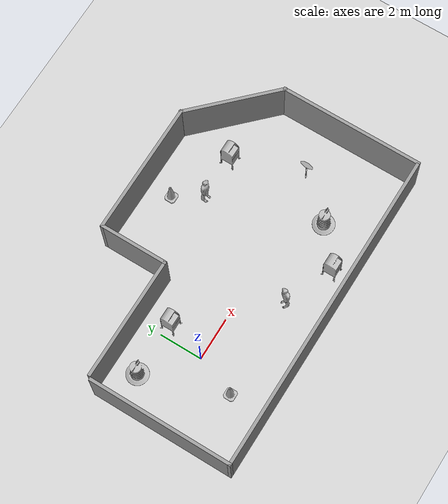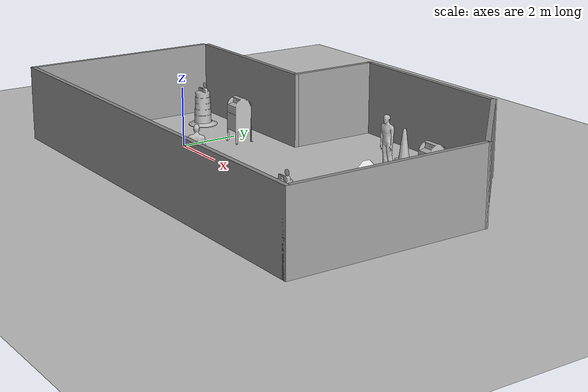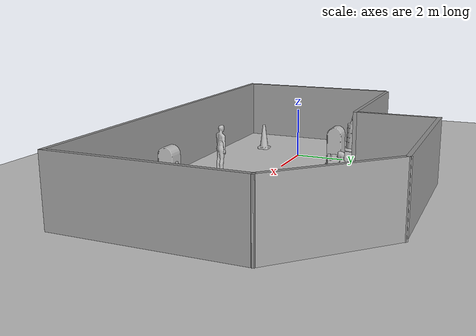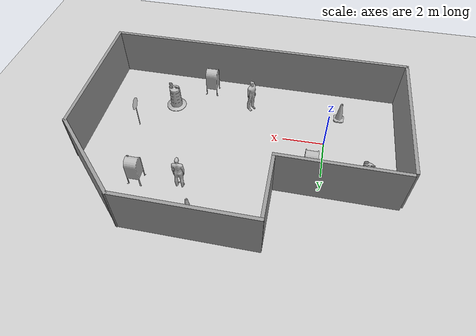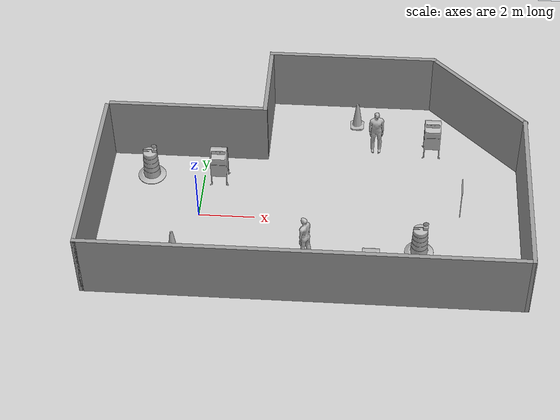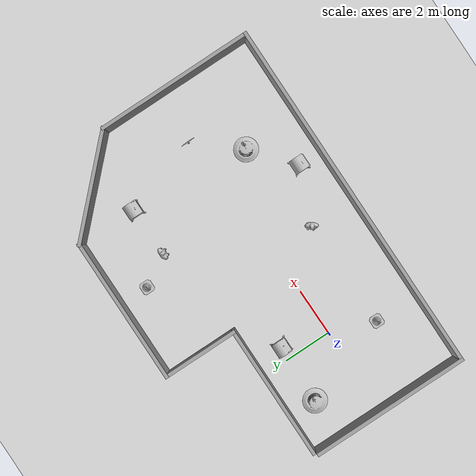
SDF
<sdf version="1.7">
 <world name="default">
  <light name="sun" type="directional">
   <pose>0 0 10 0 -0 0</pose>
   <diffuse>0.8 0.8 0.8 1</diffuse>
   <specular>0.2 0.2 0.2 1</specular>
   <attenuation>
    <range>1000</range>
    <constant>0.9</constant>
    <linear>0.01</linear>
    <quadratic>0.001</quadratic>
   </attenuation>
   <direction>-0.5 0.1 -0.9</direction>
   <spot><inner_angle>0</inner_angle><outer_angle>0</outer_angle><falloff>0</falloff></spot>
  </light>
  <model name="ground_plane">
   <static>1</static>
   <link name="link">
    <collision name="collision">
     <geometry><plane><normal>0 0 1</normal><size>100 100</size></plane></geometry>
     <surface>
      <contact><collide_bitmask>65535</collide_bitmask></contact>
      <friction><ode><mu>100</mu><mu2>50</mu2></ode></friction>
     </surface>
    </collision>
    <visual name="visual">
     <cast_shadows>0</cast_shadows>
     <geometry><plane><normal>0 0 1</normal><size>100 100</size></plane></geometry>
     <material>
      <script><uri>file://media/materials/scripts/gazebo.material</uri><name>Gazebo/Grey</name></script>
     </material>
    </visual>
   </link>
  </model>
  <gravity>0 0 -9.8</gravity>
  <magnetic_field>6e-06 2.3e-05 -4.2e-05</magnetic_field>
  <atmosphere type="adiabatic"/>
  <physics type="ode">
   <max_step_size>0.001</max_step_size>
   <real_time_factor>1</real_time_factor>
   <real_time_update_rate>1000</real_time_update_rate>
  </physics>
  <scene><ambient>0.4 0.4 0.4 1</ambient><background>0.7 0.7 0.7 1</background><shadows>1</shadows></scene>
  <audio><device>default</device></audio>
  <spherical_coordinates>
   <surface_model>EARTH_WGS84</surface_model>
   <latitude_deg>0</latitude_deg>
   <longitude_deg>0</longitude_deg>
   <elevation>0</elevation>
   <heading_deg>0</heading_deg>
  </spherical_coordinates>
  <model name="test2">
   <pose>4.00553 1.24188 0 0 -0 0</pose>
   <link name="Wall_0">
    <collision name="Wall_0_Collision">
     <geometry><box><size>6.75 0.15 2.5</size></box></geometry>
     <pose>0 0 1.25 0 -0 0</pose>
    </collision>
    <visual name="Wall_0_Visual">
     <pose>0 0 1.25 0 -0 0</pose>
     <geometry><box><size>6.75 0.15 2.5</size></box></geometry>
     <material>
      <script><uri>file://media/materials/scripts/gazebo.material</uri><name>Gazebo/Grey</name></script>
      <ambient>1 1 1 1</ambient>
     </material>
     <meta><layer>0</layer></meta>
    </visual>
    <pose>-7.56553 -1.64188 0 0 -0 1.5708</pose>
   </link>
   <link name="Wall_2">
    <collision name="Wall_2_Collision">
     <geometry><box><size>15.25 0.15 2.5</size></box></geometry>
     <pose>0 0 1.25 0 -0 0</pose>
    </collision>
    <visual name="Wall_2_Visual">
     <pose>0 0 1.25 0 -0 0</pose>
     <geometry><box><size>15.25 0.15 2.5</size></box></geometry>
     <material>
      <script><uri>file://media/materials/scripts/gazebo.material</uri><name>Gazebo/Grey</name></script>
      <ambient>1 1 1 1</ambient>
     </material>
     <meta><layer>0</layer></meta>
    </visual>
    <pose>-0.015533 -4.94188 0 0 -0 0</pose>
   </link>
   <link name="Wall_3">
    <collision name="Wall_3_Collision">
     <geometry><box><size>6.75 0.15 2.5</size></box></geometry>
     <pose>0 0 1.25 0 -0 0</pose>
    </collision>
    <visual name="Wall_3_Visual">
     <pose>0 0 1.25 0 -0 0</pose>
     <geometry><box><size>6.75 0.15 2.5</size></box></geometry>
     <material>
      <script><uri>file://media/materials/scripts/gazebo.material</uri><name>Gazebo/Grey</name></script>
      <ambient>1 1 1 1</ambient>
     </material>
     <meta><layer>0</layer></meta>
    </visual>
    <pose>7.53447 -1.64188 0 0 -0 1.5708</pose>
   </link>
   <link name="Wall_4">
    <collision name="Wall_4_Collision">
     <geometry><box><size>4.75 0.15 2.5</size></box></geometry>
     <pose>0 0 1.25 0 -0 0</pose>
    </collision>
    <visual name="Wall_4_Visual">
     <pose>0 0 1.25 0 -0 0</pose>
     <geometry><box><size>4.75 0.15 2.5</size></box></geometry>
     <material>
      <script><uri>file://media/materials/scripts/gazebo.material</uri><name>Gazebo/Grey</name></script>
      <ambient>1 1 1 1</ambient>
     </material>
     <meta><layer>0</layer></meta>
    </visual>
    <pose>5.90812 3.28447 0 0 -0 2.35619</pose>
   </link>
   <link name="Wall_5">
    <collision name="Wall_5_Collision">
     <geometry><box><size>6.25 0.15 2.5</size></box></geometry>
     <pose>0 0 1.25 0 -0 0</pose>
    </collision>
    <visual name="Wall_5_Visual">
     <pose>0 0 1.25 0 -0 0</pose>
     <geometry><box><size>6.25 0.15 2.5</size></box></geometry>
     <material>
      <script><uri>file://media/materials/scripts/gazebo.material</uri><name>Gazebo/Grey</name></script>
      <ambient>1 1 1 1</ambient>
     </material>
     <meta><layer>0</layer></meta>
    </visual>
    <pose>1.23178 4.91081 0 0 -0 3.14159</pose>
   </link>
   <link name="Wall_6">
    <collision name="Wall_6_Collision">
     <geometry><box><size>3.25 0.15 2.5</size></box></geometry>
     <pose>0 0 1.25 0 -0 0</pose>
    </collision>
    <visual name="Wall_6_Visual">
     <pose>0 0 1.25 0 -0 0</pose>
     <geometry><box><size>3.25 0.15 2.5</size></box></geometry>
     <material>
      <script><uri>file://media/materials/scripts/gazebo.material</uri><name>Gazebo/Grey</name></script>
      <ambient>1 1 1 1</ambient>
     </material>
     <meta><layer>0</layer></meta>
    </visual>
    <pose>-1.81822 3.36081 0 0 -0 -1.5708</pose>
   </link>
   <link name="Wall_7">
    <collision name="Wall_7_Collision">
     <geometry><box><size>5.75 0.15 2.5</size></box></geometry>
     <pose>0 0 1.25 0 -0 0</pose>
    </collision>
    <visual name="Wall_7_Visual">
     <pose>0 0 1.25 0 -0 0</pose>
     <geometry><box><size>5.75 0.15 2.5</size></box></geometry>
     <material>
      <script><uri>file://media/materials/scripts/gazebo.material</uri><name>Gazebo/Grey</name></script>
      <ambient>1 1 1 1</ambient>
     </material>
     <meta><layer>0</layer></meta>
    </visual>
    <pose>-4.61822 1.81081 0 0 -0 3.14159</pose>
   </link>
   <static>1</static>
  </model>
  <model name="postbox">
   <static>1</static>
   <link name="link">
    <collision name="collision">
     <geometry><mesh><uri>model://postbox/meshes/postbox.dae</uri></mesh></geometry>
    </collision>
    <visual name="visual"><geometry><mesh><uri>model://postbox/meshes/postbox.dae</uri></mesh></geometry></visual>
   </link>
   <pose>8.3243 3.7341 0 0 -0 0</pose>
  </model>
  <model name="postbox_0">
   <static>1</static>
   <link name="link">
    <collision name="collision">
     <geometry><mesh><uri>model://postbox/meshes/postbox.dae</uri></mesh></geometry>
    </collision>
    <visual name="visual"><geometry><mesh><uri>model://postbox/meshes/postbox.dae</uri></mesh></geometry></visual>
   </link>
   <pose>6.21864 -2.71902 0 0 -0 0</pose>
  </model>
  <model name="postbox_1">
   <static>1</static>
   <link name="link">
    <collision name="collision">
     <geometry><mesh><uri>model://postbox/meshes/postbox.dae</uri></mesh></geometry>
    </collision>
    <visual name="visual"><geometry><mesh><uri>model://postbox/meshes/postbox.dae</uri></mesh></geometry></visual>
   </link>
   <pose>0.574091 1.85427 0 0 -0 0</pose>
  </model>
  <model name="Stop Sign">
   <static>1</static>
   <link name="link">
    <collision name="collision">
     <geometry><mesh><uri>model://stop_sign/meshes/stop_sign.dae</uri></mesh></geometry>
    </collision>
    <visual name="visual">
     <geometry><mesh><uri>model://stop_sign/meshes/stop_sign.dae</uri></mesh></geometry>
     <material>
      <script>
       <uri>model://stop_sign/materials/scripts</uri>
       <uri>model://stop_sign/materials/textures</uri>
       <name>StopSign/Diffuse</name>
      </script>
     </material>
    </visual>
   </link>
   <pose>9.35068 0.455396 0 0 0 -1.54287</pose>
  </model>
  <model name="Construction Barrel">
   <link name="link">
    <inertial>
     <pose>0 0 0.4 0 -0 0</pose>
     <mass>500</mass>
     <inertia><ixx>51.2096</ixx><iyy>51.2096</iyy><izz>25</izz><ixy>0</ixy><ixz>0</ixz><iyz>0</iyz></inertia>
    </inertial>
    <collision name="collision">
     <geometry><mesh><uri>model://construction_barrel/meshes/construction_barrel.dae</uri></mesh></geometry>
    </collision>
    <visual name="visual">
     <geometry><mesh><uri>model://construction_barrel/meshes/construction_barrel.dae</uri></mesh></geometry>
    </visual>
   </link>
   <pose>7.90287 -1.31531 0 0 -0 0</pose>
  </model>
  <model name="Construction Cone">
   <link name="link">
    <collision name="collision">
     <geometry>
      <mesh><scale>10 10 10</scale><uri>model://construction_cone/meshes/construction_cone.dae</uri></mesh>
     </geometry>
    </collision>
    <visual name="visual">
     <geometry>
      <mesh><scale>10 10 10</scale><uri>model://construction_cone/meshes/construction_cone.dae</uri></mesh>
     </geometry>
    </visual>
    <inertial>
     <inertia><ixx>1</ixx><ixy>0</ixy><ixz>0</ixz><iyy>1</iyy><iyz>0</iyz><izz>1</izz></inertia>
     <mass>1</mass>
    </inertial>
   </link>
   <pose>5.50393 5.00755 0 0 -0 0</pose>
  </model>
  <model name="Construction Cone_0">
   <link name="link">
    <collision name="collision">
     <geometry>
      <mesh><scale>10 10 10</scale><uri>model://construction_cone/meshes/construction_cone.dae</uri></mesh>
     </geometry>
    </collision>
    <visual name="visual">
     <geometry>
      <mesh><scale>10 10 10</scale><uri>model://construction_cone/meshes/construction_cone.dae</uri></mesh>
     </geometry>
    </visual>
    <inertial>
     <inertia><ixx>1</ixx><ixy>0</ixy><ixz>0</ixz><iyy>1</iyy><iyz>0</iyz><izz>1</izz></inertia>
     <mass>1</mass>
    </inertial>
   </link>
   <pose>-0.668634 -1.87913 0 0 -0 0</pose>
  </model>
  <model name="person_standing">
   <link name="link">
    <inertial>
     <pose>0 -0.1 0.95 0 -0 0</pose>
     <mass>80</mass>
     <inertia><ixx>24.88</ixx><ixy>0</ixy><ixz>0</ixz><iyy>25.73</iyy><iyz>0</iyz><izz>2.48</izz></inertia>
    </inertial>
    <collision name="bottom">
     <pose>0 -0.1 0.01 0 -0 0</pose>
     <geometry><box><size>0.5 0.35 0.02</size></box></geometry>
    </collision>
    <collision name="person">
     <pose>0 0 0.02 0.04 -0 0</pose>
     <geometry><mesh><uri>model://person_standing/meshes/standing.dae</uri></mesh></geometry>
    </collision>
    <visual name="visual">
     <pose>0 0 0.02 0.04 -0 0</pose>
     <geometry><mesh><uri>model://person_standing/meshes/standing.dae</uri></mesh></geometry>
    </visual>
   </link>
   <pose>6.24323 3.77492 0 0 -0 0</pose>
  </model>
  <model name="person_standing_0">
   <link name="link">
    <inertial>
     <pose>0 -0.1 0.95 0 -0 0</pose>
     <mass>80</mass>
     <inertia><ixx>24.88</ixx><ixy>0</ixy><ixz>0</ixz><iyy>25.73</iyy><iyz>0</iyz><izz>2.48</izz></inertia>
    </inertial>
    <collision name="bottom">
     <pose>0 -0.1 0.01 0 -0 0</pose>
     <geometry><box><size>0.5 0.35 0.02</size></box></geometry>
    </collision>
    <collision name="person">
     <pose>0 0 0.02 0.04 -0 0</pose>
     <geometry><mesh><uri>model://person_standing/meshes/standing.dae</uri></mesh></geometry>
    </collision>
    <visual name="visual">
     <pose>0 0 0.02 0.04 -0 0</pose>
     <geometry><mesh><uri>model://person_standing/meshes/standing.dae</uri></mesh></geometry>
    </visual>
   </link>
   <pose>3.99723 -1.82286 0 0 0 -2.2225</pose>
  </model>
  <model name="Construction Barrel_0">
   <link name="link">
    <inertial>
     <pose>0 0 0.4 0 -0 0</pose>
     <mass>500</mass>
     <inertia><ixx>51.2096</ixx><iyy>51.2096</iyy><izz>25</izz><ixy>0</ixy><ixz>0</ixz><iyz>0</iyz></inertia>
    </inertial>
    <collision name="collision">
     <geometry><mesh><uri>model://construction_barrel/meshes/construction_barrel.dae</uri></mesh></geometry>
    </collision>
    <visual name="visual">
     <geometry><mesh><uri>model://construction_barrel/meshes/construction_barrel.dae</uri></mesh></geometry>
    </visual>
   </link>
   <pose>-1.95596 1.9207 0 0 -0 0</pose>
  </model>
 </world>
</sdf>
